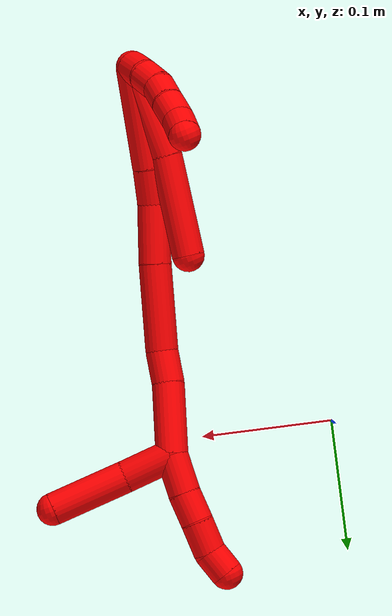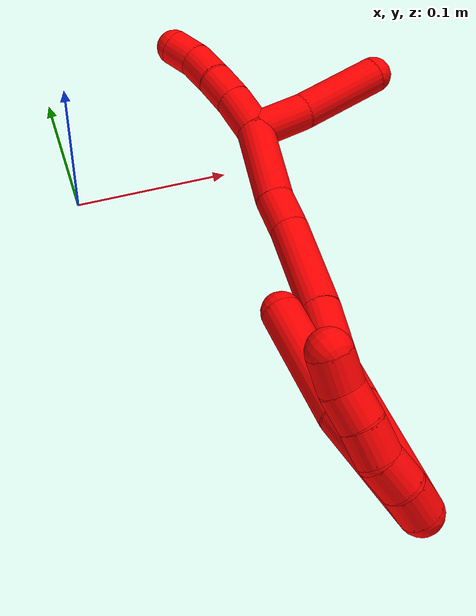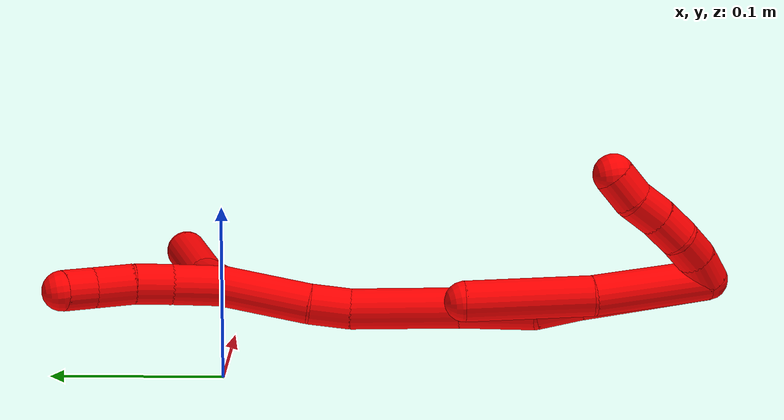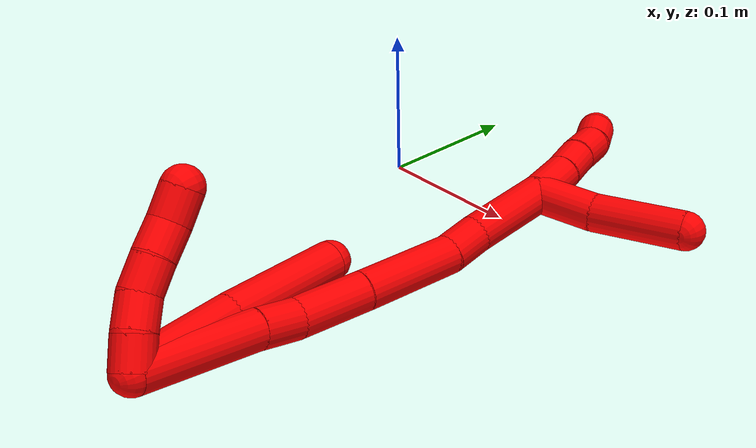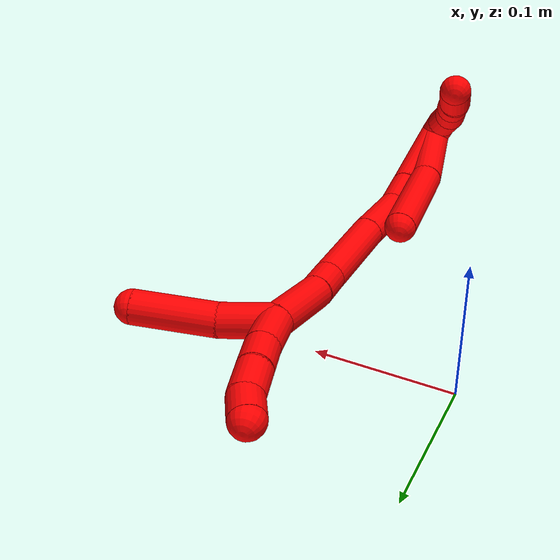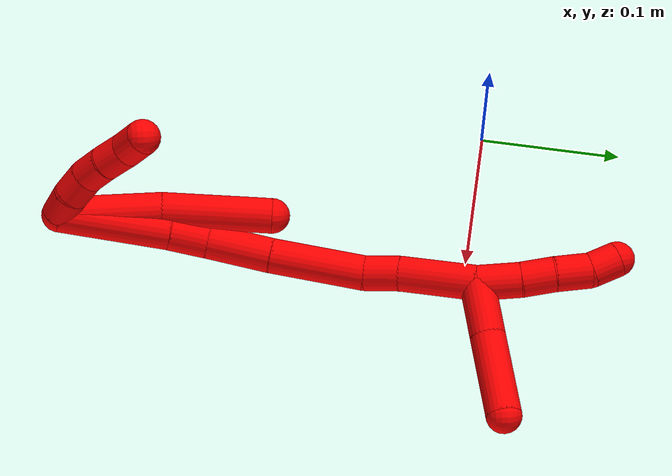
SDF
<sdf version="1.7">
 <world name="default">
  <model name="2">
   <static>0</static>
   <link name="2">
    <collision name="collision-cylinder-e_1_2_8">
     <pose>-0.000115 0.000368 -0.036059 -3.1314 -0.003191 0.606535</pose>
     <geometry><cylinder><radius>0.0125</radius><length>0.072122</length></cylinder></geometry>
     <surface>
      <friction><ode><mu>1.16</mu><mu2>1.16</mu2><slip1>0</slip1><slip2>0</slip2></ode></friction>
      <contact><ode><kp>1e+06</kp><kd>1</kd><max_vel>0</max_vel><min_depth>0.001</min_depth></ode></contact>
     </surface>
    </collision>
    <visual name="visual-cylinder-e_1_2_8">
     <pose>-0.000115 0.000368 -0.036059 -3.1314 -0.003191 0.606535</pose>
     <geometry><cylinder><radius>0.0125</radius><length>0.072122</length></cylinder></geometry>
     <material><ambient>1 0 0 1</ambient></material>
    </visual>
    <collision name="collision-cylinder-e_2_8_6">
     <pose>2.1e-05 0.007242 -0.110509 -2.97371 0.006442 -0.076529</pose>
     <geometry><cylinder><radius>0.0125</radius><length>0.077878</length></cylinder></geometry>
     <surface>
      <friction><ode><mu>1.16</mu><mu2>1.16</mu2><slip1>0</slip1><slip2>0</slip2></ode></friction>
      <contact><ode><kp>1e+06</kp><kd>1</kd><max_vel>0</max_vel><min_depth>0.001</min_depth></ode></contact>
     </surface>
    </collision>
    <visual name="visual-cylinder-e_2_8_6">
     <pose>2.1e-05 0.007242 -0.110509 -2.97371 0.006442 -0.076529</pose>
     <geometry><cylinder><radius>0.0125</radius><length>0.077878</length></cylinder></geometry>
     <material><ambient>1 0 0 1</ambient></material>
    </visual>
    <collision name="collision-cylinder-e_1_2_9">
     <pose>-0.008978 0.001169 -0.004247 -2.87307 -1.1147 2.71475</pose>
     <geometry><cylinder><radius>0.0125</radius><length>0.02</length></cylinder></geometry>
     <surface>
      <friction><ode><mu>1.16</mu><mu2>1.16</mu2><slip1>0</slip1><slip2>0</slip2></ode></friction>
      <contact><ode><kp>1e+06</kp><kd>1</kd><max_vel>0</max_vel><min_depth>0.001</min_depth></ode></contact>
     </surface>
    </collision>
    <visual name="visual-cylinder-e_1_2_9">
     <pose>-0.008978 0.001169 -0.004247 -2.87307 -1.1147 2.71475</pose>
     <geometry><cylinder><radius>0.0125</radius><length>0.02</length></cylinder></geometry>
     <material><ambient>1 0 0 1</ambient></material>
    </visual>
    <collision name="collision-cylinder-e_2_9_10">
     <pose>-0.026141 0.002717 -0.014225 -3.07534 -0.958917 3.01429</pose>
     <geometry><cylinder><radius>0.0125</radius><length>0.02</length></cylinder></geometry>
     <surface>
      <friction><ode><mu>1.16</mu><mu2>1.16</mu2><slip1>0</slip1><slip2>0</slip2></ode></friction>
      <contact><ode><kp>1e+06</kp><kd>1</kd><max_vel>0</max_vel><min_depth>0.001</min_depth></ode></contact>
     </surface>
    </collision>
    <visual name="visual-cylinder-e_2_9_10">
     <pose>-0.026141 0.002717 -0.014225 -3.07534 -0.958917 3.01429</pose>
     <geometry><cylinder><radius>0.0125</radius><length>0.02</length></cylinder></geometry>
     <material><ambient>1 0 0 1</ambient></material>
    </visual>
    <collision name="collision-cylinder-e_3_10_11">
     <pose>-0.041513 0.005693 -0.026407 -2.75903 -0.801846 2.28452</pose>
     <geometry><cylinder><radius>0.0125</radius><length>0.02</length></cylinder></geometry>
     <surface>
      <friction><ode><mu>1.16</mu><mu2>1.16</mu2><slip1>0</slip1><slip2>0</slip2></ode></friction>
      <contact><ode><kp>1e+06</kp><kd>1</kd><max_vel>0</max_vel><min_depth>0.001</min_depth></ode></contact>
     </surface>
    </collision>
    <visual name="visual-cylinder-e_3_10_11">
     <pose>-0.041513 0.005693 -0.026407 -2.75903 -0.801846 2.28452</pose>
     <geometry><cylinder><radius>0.0125</radius><length>0.02</length></cylinder></geometry>
     <material><ambient>1 0 0 1</ambient></material>
    </visual>
    <collision name="collision-cylinder-e_4_11_12">
     <pose>-0.055313 0.01031 -0.040082 -2.86883 -0.722531 2.44483</pose>
     <geometry><cylinder><radius>0.0125</radius><length>0.02</length></cylinder></geometry>
     <surface>
      <friction><ode><mu>1.16</mu><mu2>1.16</mu2><slip1>0</slip1><slip2>0</slip2></ode></friction>
      <contact><ode><kp>1e+06</kp><kd>1</kd><max_vel>0</max_vel><min_depth>0.001</min_depth></ode></contact>
     </surface>
    </collision>
    <visual name="visual-cylinder-e_4_11_12">
     <pose>-0.055313 0.01031 -0.040082 -2.86883 -0.722531 2.44483</pose>
     <geometry><cylinder><radius>0.0125</radius><length>0.02</length></cylinder></geometry>
     <material><ambient>1 0 0 1</ambient></material>
    </visual>
    <collision name="collision-cylinder-e_5_12_5">
     <pose>-0.069394 0.01608 -0.052799 -2.54268 -0.843286 1.9359</pose>
     <geometry><cylinder><radius>0.0125</radius><length>0.02</length></cylinder></geometry>
     <surface>
      <friction><ode><mu>1.16</mu><mu2>1.16</mu2><slip1>0</slip1><slip2>0</slip2></ode></friction>
      <contact><ode><kp>1e+06</kp><kd>1</kd><max_vel>0</max_vel><min_depth>0.001</min_depth></ode></contact>
     </surface>
    </collision>
    <visual name="visual-cylinder-e_5_12_5">
     <pose>-0.069394 0.01608 -0.052799 -2.54268 -0.843286 1.9359</pose>
     <geometry><cylinder><radius>0.0125</radius><length>0.02</length></cylinder></geometry>
     <material><ambient>1 0 0 1</ambient></material>
    </visual>
    <collision name="collision-cylinder-e_1_2_13">
     <pose>0.005906 0.006004 -0.038198 -2.98569 0.151573 -1.54252</pose>
     <geometry><cylinder><radius>0.0125</radius><length>0.078231</length></cylinder></geometry>
     <surface>
      <friction><ode><mu>1.16</mu><mu2>1.16</mu2><slip1>0</slip1><slip2>0</slip2></ode></friction>
      <contact><ode><kp>1e+06</kp><kd>1</kd><max_vel>0</max_vel><min_depth>0.001</min_depth></ode></contact>
     </surface>
    </collision>
    <visual name="visual-cylinder-e_1_2_13">
     <pose>0.005906 0.006004 -0.038198 -2.98569 0.151573 -1.54252</pose>
     <geometry><cylinder><radius>0.0125</radius><length>0.078231</length></cylinder></geometry>
     <material><ambient>1 0 0 1</ambient></material>
    </visual>
    <collision name="collision-cylinder-e_2_13_14">
     <pose>0.014863 0.014098 -0.089877 -2.98775 0.220023 -1.92313</pose>
     <geometry><cylinder><radius>0.0125</radius><length>0.027959</length></cylinder></geometry>
     <surface>
      <friction><ode><mu>1.16</mu><mu2>1.16</mu2><slip1>0</slip1><slip2>0</slip2></ode></friction>
      <contact><ode><kp>1e+06</kp><kd>1</kd><max_vel>0</max_vel><min_depth>0.001</min_depth></ode></contact>
     </surface>
    </collision>
    <visual name="visual-cylinder-e_2_13_14">
     <pose>0.014863 0.014098 -0.089877 -2.98775 0.220023 -1.92313</pose>
     <geometry><cylinder><radius>0.0125</radius><length>0.027959</length></cylinder></geometry>
     <material><ambient>1 0 0 1</ambient></material>
    </visual>
    <collision name="collision-cylinder-e_3_14_15">
     <pose>0.01973 0.024127 -0.12498 -2.78972 0.078682 -0.4358</pose>
     <geometry><cylinder><radius>0.0125</radius><length>0.046208</length></cylinder></geometry>
     <surface>
      <friction><ode><mu>1.16</mu><mu2>1.16</mu2><slip1>0</slip1><slip2>0</slip2></ode></friction>
      <contact><ode><kp>1e+06</kp><kd>1</kd><max_vel>0</max_vel><min_depth>0.001</min_depth></ode></contact>
     </surface>
    </collision>
    <visual name="visual-cylinder-e_3_14_15">
     <pose>0.01973 0.024127 -0.12498 -2.78972 0.078682 -0.4358</pose>
     <geometry><cylinder><radius>0.0125</radius><length>0.046208</length></cylinder></geometry>
     <material><ambient>1 0 0 1</ambient></material>
    </visual>
    <collision name="collision-cylinder-e_4_15_16">
     <pose>0.023969 0.0417 -0.178526 -2.84849 0.072513 -0.48191</pose>
     <geometry><cylinder><radius>0.0125</radius><length>0.066868</length></cylinder></geometry>
     <surface>
      <friction><ode><mu>1.16</mu><mu2>1.16</mu2><slip1>0</slip1><slip2>0</slip2></ode></friction>
      <contact><ode><kp>1e+06</kp><kd>1</kd><max_vel>0</max_vel><min_depth>0.001</min_depth></ode></contact>
     </surface>
    </collision>
    <visual name="visual-cylinder-e_4_15_16">
     <pose>0.023969 0.0417 -0.178526 -2.84849 0.072513 -0.48191</pose>
     <geometry><cylinder><radius>0.0125</radius><length>0.066868</length></cylinder></geometry>
     <material><ambient>1 0 0 1</ambient></material>
    </visual>
    <collision name="collision-cylinder-e_5_16_17">
     <pose>0.02479 0.054653 -0.22264 -2.87581 -0.12602 0.881962</pose>
     <geometry><cylinder><radius>0.0125</radius><length>0.025471</length></cylinder></geometry>
     <surface>
      <friction><ode><mu>1.16</mu><mu2>1.16</mu2><slip1>0</slip1><slip2>0</slip2></ode></friction>
      <contact><ode><kp>1e+06</kp><kd>1</kd><max_vel>0</max_vel><min_depth>0.001</min_depth></ode></contact>
     </surface>
    </collision>
    <visual name="visual-cylinder-e_5_16_17">
     <pose>0.02479 0.054653 -0.22264 -2.87581 -0.12602 0.881962</pose>
     <geometry><cylinder><radius>0.0125</radius><length>0.025471</length></cylinder></geometry>
     <material><ambient>1 0 0 1</ambient></material>
    </visual>
    <collision name="collision-cylinder-e_6_17_1">
     <pose>0.020302 0.069024 -0.259991 -2.72768 -0.10471 0.489171</pose>
     <geometry><cylinder><radius>0.0125</radius><length>0.055263</length></cylinder></geometry>
     <surface>
      <friction><ode><mu>1.16</mu><mu2>1.16</mu2><slip1>0</slip1><slip2>0</slip2></ode></friction>
      <contact><ode><kp>1e+06</kp><kd>1</kd><max_vel>0</max_vel><min_depth>0.001</min_depth></ode></contact>
     </surface>
    </collision>
    <visual name="visual-cylinder-e_6_17_1">
     <pose>0.020302 0.069024 -0.259991 -2.72768 -0.10471 0.489171</pose>
     <geometry><cylinder><radius>0.0125</radius><length>0.055263</length></cylinder></geometry>
     <material><ambient>1 0 0 1</ambient></material>
    </visual>
    <collision name="collision-cylinder-e_1_1_18">
     <pose>0.015548 0.081976 -0.300261 -3.01653 -0.121913 1.54524</pose>
     <geometry><cylinder><radius>0.0125</radius><length>0.030688</length></cylinder></geometry>
     <surface>
      <friction><ode><mu>1.16</mu><mu2>1.16</mu2><slip1>0</slip1><slip2>0</slip2></ode></friction>
      <contact><ode><kp>1e+06</kp><kd>1</kd><max_vel>0</max_vel><min_depth>0.001</min_depth></ode></contact>
     </surface>
    </collision>
    <visual name="visual-cylinder-e_1_1_18">
     <pose>0.015548 0.081976 -0.300261 -3.01653 -0.121913 1.54524</pose>
     <geometry><cylinder><radius>0.0125</radius><length>0.030688</length></cylinder></geometry>
     <material><ambient>1 0 0 1</ambient></material>
    </visual>
    <collision name="collision-cylinder-e_2_18_19">
     <pose>0.011665 0.084286 -0.326947 -3.10621 -0.172385 2.73762</pose>
     <geometry><cylinder><radius>0.0125</radius><length>0.023512</length></cylinder></geometry>
     <surface>
      <friction><ode><mu>1.16</mu><mu2>1.16</mu2><slip1>0</slip1><slip2>0</slip2></ode></friction>
      <contact><ode><kp>1e+06</kp><kd>1</kd><max_vel>0</max_vel><min_depth>0.001</min_depth></ode></contact>
     </surface>
    </collision>
    <visual name="visual-cylinder-e_2_18_19">
     <pose>0.011665 0.084286 -0.326947 -3.10621 -0.172385 2.73762</pose>
     <geometry><cylinder><radius>0.0125</radius><length>0.023512</length></cylinder></geometry>
     <material><ambient>1 0 0 1</ambient></material>
    </visual>
    <collision name="collision-cylinder-e_3_19_20">
     <pose>0.008838 0.084738 -0.351062 -3.13819 -0.064567 3.03625</pose>
     <geometry><cylinder><radius>0.0125</radius><length>0.025133</length></cylinder></geometry>
     <surface>
      <friction><ode><mu>1.16</mu><mu2>1.16</mu2><slip1>0</slip1><slip2>0</slip2></ode></friction>
      <contact><ode><kp>1e+06</kp><kd>1</kd><max_vel>0</max_vel><min_depth>0.001</min_depth></ode></contact>
     </surface>
    </collision>
    <visual name="visual-cylinder-e_3_19_20">
     <pose>0.008838 0.084738 -0.351062 -3.13819 -0.064567 3.03625</pose>
     <geometry><cylinder><radius>0.0125</radius><length>0.025133</length></cylinder></geometry>
     <material><ambient>1 0 0 1</ambient></material>
    </visual>
    <collision name="collision-cylinder-e_4_20_4">
     <pose>0.005452 0.082583 -0.373365 2.92022 -0.251795 -1.7004</pose>
     <geometry><cylinder><radius>0.0125</radius><length>0.020667</length></cylinder></geometry>
     <surface>
      <friction><ode><mu>1.16</mu><mu2>1.16</mu2><slip1>0</slip1><slip2>0</slip2></ode></friction>
      <contact><ode><kp>1e+06</kp><kd>1</kd><max_vel>0</max_vel><min_depth>0.001</min_depth></ode></contact>
     </surface>
    </collision>
    <visual name="visual-cylinder-e_4_20_4">
     <pose>0.005452 0.082583 -0.373365 2.92022 -0.251795 -1.7004</pose>
     <geometry><cylinder><radius>0.0125</radius><length>0.020667</length></cylinder></geometry>
     <material><ambient>1 0 0 1</ambient></material>
    </visual>
    <collision name="collision-cylinder-e_1_1_21">
     <pose>0.027755 0.096774 -0.28662 -1.65862 0.552785 -0.600709</pose>
     <geometry><cylinder><radius>0.0125</radius><length>0.03939</length></cylinder></geometry>
     <surface>
      <friction><ode><mu>1.16</mu><mu2>1.16</mu2><slip1>0</slip1><slip2>0</slip2></ode></friction>
      <contact><ode><kp>1e+06</kp><kd>1</kd><max_vel>0</max_vel><min_depth>0.001</min_depth></ode></contact>
     </surface>
    </collision>
    <visual name="visual-cylinder-e_1_1_21">
     <pose>0.027755 0.096774 -0.28662 -1.65862 0.552785 -0.600709</pose>
     <geometry><cylinder><radius>0.0125</radius><length>0.03939</length></cylinder></geometry>
     <material><ambient>1 0 0 1</ambient></material>
    </visual>
    <collision name="collision-cylinder-e_2_21_3">
     <pose>0.049753 0.141418 -0.289295 -1.61386 0.39486 -0.411765</pose>
     <geometry><cylinder><radius>0.0125</radius><length>0.06061</length></cylinder></geometry>
     <surface>
      <friction><ode><mu>1.16</mu><mu2>1.16</mu2><slip1>0</slip1><slip2>0</slip2></ode></friction>
      <contact><ode><kp>1e+06</kp><kd>1</kd><max_vel>0</max_vel><min_depth>0.001</min_depth></ode></contact>
     </surface>
    </collision>
    <visual name="visual-cylinder-e_2_21_3">
     <pose>0.049753 0.141418 -0.289295 -1.61386 0.39486 -0.411765</pose>
     <geometry><cylinder><radius>0.0125</radius><length>0.06061</length></cylinder></geometry>
     <material><ambient>1 0 0 1</ambient></material>
    </visual>
    <collision name="collision-sphere-3">
     <pose>0.061411 0.169365 -0.290499 0 -0 0</pose>
     <geometry><sphere><radius>0.0125</radius></sphere></geometry>
     <surface>
      <friction><ode><mu>1.16</mu><mu2>1.16</mu2><slip1>0</slip1><slip2>0</slip2></ode></friction>
      <contact><ode><kp>1e+06</kp><kd>1</kd><max_vel>0</max_vel><min_depth>0.001</min_depth></ode></contact>
     </surface>
    </collision>
    <visual name="visual-sphere-3">
     <pose>0.061411 0.169365 -0.290499 0 -0 0</pose>
     <geometry><sphere><radius>0.0125</radius></sphere></geometry>
     <material><ambient>1 0 0 1</ambient></material>
    </visual>
    <collision name="collision-sphere-21">
     <pose>0.038096 0.113471 -0.288091 0 -0 0</pose>
     <geometry><sphere><radius>0.0125</radius></sphere></geometry>
     <surface>
      <friction><ode><mu>1.16</mu><mu2>1.16</mu2><slip1>0</slip1><slip2>0</slip2></ode></friction>
      <contact><ode><kp>1e+06</kp><kd>1</kd><max_vel>0</max_vel><min_depth>0.001</min_depth></ode></contact>
     </surface>
    </collision>
    <visual name="visual-sphere-21">
     <pose>0.038096 0.113471 -0.288091 0 -0 0</pose>
     <geometry><sphere><radius>0.0125</radius></sphere></geometry>
     <material><ambient>1 0 0 1</ambient></material>
    </visual>
    <collision name="collision-sphere-4">
     <pose>0.002878 0.080386 -0.383129 0 -0 0</pose>
     <geometry><sphere><radius>0.0125</radius></sphere></geometry>
     <surface>
      <friction><ode><mu>1.16</mu><mu2>1.16</mu2><slip1>0</slip1><slip2>0</slip2></ode></friction>
      <contact><ode><kp>1e+06</kp><kd>1</kd><max_vel>0</max_vel><min_depth>0.001</min_depth></ode></contact>
     </surface>
    </collision>
    <visual name="visual-sphere-4">
     <pose>0.002878 0.080386 -0.383129 0 -0 0</pose>
     <geometry><sphere><radius>0.0125</radius></sphere></geometry>
     <material><ambient>1 0 0 1</ambient></material>
    </visual>
    <collision name="collision-sphere-20">
     <pose>0.008027 0.084781 -0.363602 0 -0 0</pose>
     <geometry><sphere><radius>0.0125</radius></sphere></geometry>
     <surface>
      <friction><ode><mu>1.16</mu><mu2>1.16</mu2><slip1>0</slip1><slip2>0</slip2></ode></friction>
      <contact><ode><kp>1e+06</kp><kd>1</kd><max_vel>0</max_vel><min_depth>0.001</min_depth></ode></contact>
     </surface>
    </collision>
    <visual name="visual-sphere-20">
     <pose>0.008027 0.084781 -0.363602 0 -0 0</pose>
     <geometry><sphere><radius>0.0125</radius></sphere></geometry>
     <material><ambient>1 0 0 1</ambient></material>
    </visual>
    <collision name="collision-sphere-11">
     <pose>-0.0487 0.008289 -0.032858 0 -0 0</pose>
     <geometry><sphere><radius>0.0125</radius></sphere></geometry>
     <surface>
      <friction><ode><mu>1.16</mu><mu2>1.16</mu2><slip1>0</slip1><slip2>0</slip2></ode></friction>
      <contact><ode><kp>1e+06</kp><kd>1</kd><max_vel>0</max_vel><min_depth>0.001</min_depth></ode></contact>
     </surface>
    </collision>
    <visual name="visual-sphere-11">
     <pose>-0.0487 0.008289 -0.032858 0 -0 0</pose>
     <geometry><sphere><radius>0.0125</radius></sphere></geometry>
     <material><ambient>1 0 0 1</ambient></material>
    </visual>
    <collision name="collision-sphere-10">
     <pose>-0.034327 0.003098 -0.019956 0 -0 0</pose>
     <geometry><sphere><radius>0.0125</radius></sphere></geometry>
     <surface>
      <friction><ode><mu>1.16</mu><mu2>1.16</mu2><slip1>0</slip1><slip2>0</slip2></ode></friction>
      <contact><ode><kp>1e+06</kp><kd>1</kd><max_vel>0</max_vel><min_depth>0.001</min_depth></ode></contact>
     </surface>
    </collision>
    <visual name="visual-sphere-10">
     <pose>-0.034327 0.003098 -0.019956 0 -0 0</pose>
     <geometry><sphere><radius>0.0125</radius></sphere></geometry>
     <material><ambient>1 0 0 1</ambient></material>
    </visual>
    <collision name="collision-sphere-6">
     <pose>0.000272 0.013748 -0.148899 0 -0 0</pose>
     <geometry><sphere><radius>0.0125</radius></sphere></geometry>
     <surface>
      <friction><ode><mu>1.16</mu><mu2>1.16</mu2><slip1>0</slip1><slip2>0</slip2></ode></friction>
      <contact><ode><kp>1e+06</kp><kd>1</kd><max_vel>0</max_vel><min_depth>0.001</min_depth></ode></contact>
     </surface>
    </collision>
    <visual name="visual-sphere-6">
     <pose>0.000272 0.013748 -0.148899 0 -0 0</pose>
     <geometry><sphere><radius>0.0125</radius></sphere></geometry>
     <material><ambient>1 0 0 1</ambient></material>
    </visual>
    <collision name="collision-sphere-9">
     <pose>-0.017956 0.002337 -0.008493 0 -0 0</pose>
     <geometry><sphere><radius>0.0125</radius></sphere></geometry>
     <surface>
      <friction><ode><mu>1.16</mu><mu2>1.16</mu2><slip1>0</slip1><slip2>0</slip2></ode></friction>
      <contact><ode><kp>1e+06</kp><kd>1</kd><max_vel>0</max_vel><min_depth>0.001</min_depth></ode></contact>
     </surface>
    </collision>
    <visual name="visual-sphere-9">
     <pose>-0.017956 0.002337 -0.008493 0 -0 0</pose>
     <geometry><sphere><radius>0.0125</radius></sphere></geometry>
     <material><ambient>1 0 0 1</ambient></material>
    </visual>
    <collision name="collision-sphere-2">
     <geometry><sphere><radius>0.0125</radius></sphere></geometry>
     <surface>
      <friction><ode><mu>1.16</mu><mu2>1.16</mu2><slip1>0</slip1><slip2>0</slip2></ode></friction>
      <contact><ode><kp>1e+06</kp><kd>1</kd><max_vel>0</max_vel><min_depth>0.001</min_depth></ode></contact>
     </surface>
    </collision>
    <visual name="visual-sphere-2">
     <geometry><sphere><radius>0.0125</radius></sphere></geometry>
     <material><ambient>1 0 0 1</ambient></material>
    </visual>
    <collision name="collision-sphere-19">
     <pose>0.009649 0.084695 -0.338521 0 -0 0</pose>
     <geometry><sphere><radius>0.0125</radius></sphere></geometry>
     <surface>
      <friction><ode><mu>1.16</mu><mu2>1.16</mu2><slip1>0</slip1><slip2>0</slip2></ode></friction>
      <contact><ode><kp>1e+06</kp><kd>1</kd><max_vel>0</max_vel><min_depth>0.001</min_depth></ode></contact>
     </surface>
    </collision>
    <visual name="visual-sphere-19">
     <pose>0.009649 0.084695 -0.338521 0 -0 0</pose>
     <geometry><sphere><radius>0.0125</radius></sphere></geometry>
     <material><ambient>1 0 0 1</ambient></material>
    </visual>
    <collision name="collision-sphere-8">
     <pose>-0.00023 0.000735 -0.072118 0 -0 0</pose>
     <geometry><sphere><radius>0.0125</radius></sphere></geometry>
     <surface>
      <friction><ode><mu>1.16</mu><mu2>1.16</mu2><slip1>0</slip1><slip2>0</slip2></ode></friction>
      <contact><ode><kp>1e+06</kp><kd>1</kd><max_vel>0</max_vel><min_depth>0.001</min_depth></ode></contact>
     </surface>
    </collision>
    <visual name="visual-sphere-8">
     <pose>-0.00023 0.000735 -0.072118 0 -0 0</pose>
     <geometry><sphere><radius>0.0125</radius></sphere></geometry>
     <material><ambient>1 0 0 1</ambient></material>
    </visual>
    <collision name="collision-sphere-12">
     <pose>-0.061926 0.012331 -0.047306 0 -0 0</pose>
     <geometry><sphere><radius>0.0125</radius></sphere></geometry>
     <surface>
      <friction><ode><mu>1.16</mu><mu2>1.16</mu2><slip1>0</slip1><slip2>0</slip2></ode></friction>
      <contact><ode><kp>1e+06</kp><kd>1</kd><max_vel>0</max_vel><min_depth>0.001</min_depth></ode></contact>
     </surface>
    </collision>
    <visual name="visual-sphere-12">
     <pose>-0.061926 0.012331 -0.047306 0 -0 0</pose>
     <geometry><sphere><radius>0.0125</radius></sphere></geometry>
     <material><ambient>1 0 0 1</ambient></material>
    </visual>
    <collision name="collision-sphere-5">
     <pose>-0.076862 0.019829 -0.058292 0 -0 0</pose>
     <geometry><sphere><radius>0.0125</radius></sphere></geometry>
     <surface>
      <friction><ode><mu>1.16</mu><mu2>1.16</mu2><slip1>0</slip1><slip2>0</slip2></ode></friction>
      <contact><ode><kp>1e+06</kp><kd>1</kd><max_vel>0</max_vel><min_depth>0.001</min_depth></ode></contact>
     </surface>
    </collision>
    <visual name="visual-sphere-5">
     <pose>-0.076862 0.019829 -0.058292 0 -0 0</pose>
     <geometry><sphere><radius>0.0125</radius></sphere></geometry>
     <material><ambient>1 0 0 1</ambient></material>
    </visual>
    <collision name="collision-sphere-13">
     <pose>0.011812 0.012008 -0.076396 0 -0 0</pose>
     <geometry><sphere><radius>0.0125</radius></sphere></geometry>
     <surface>
      <friction><ode><mu>1.16</mu><mu2>1.16</mu2><slip1>0</slip1><slip2>0</slip2></ode></friction>
      <contact><ode><kp>1e+06</kp><kd>1</kd><max_vel>0</max_vel><min_depth>0.001</min_depth></ode></contact>
     </surface>
    </collision>
    <visual name="visual-sphere-13">
     <pose>0.011812 0.012008 -0.076396 0 -0 0</pose>
     <geometry><sphere><radius>0.0125</radius></sphere></geometry>
     <material><ambient>1 0 0 1</ambient></material>
    </visual>
    <collision name="collision-sphere-14">
     <pose>0.017914 0.016189 -0.103359 0 -0 0</pose>
     <geometry><sphere><radius>0.0125</radius></sphere></geometry>
     <surface>
      <friction><ode><mu>1.16</mu><mu2>1.16</mu2><slip1>0</slip1><slip2>0</slip2></ode></friction>
      <contact><ode><kp>1e+06</kp><kd>1</kd><max_vel>0</max_vel><min_depth>0.001</min_depth></ode></contact>
     </surface>
    </collision>
    <visual name="visual-sphere-14">
     <pose>0.017914 0.016189 -0.103359 0 -0 0</pose>
     <geometry><sphere><radius>0.0125</radius></sphere></geometry>
     <material><ambient>1 0 0 1</ambient></material>
    </visual>
    <collision name="collision-sphere-15">
     <pose>0.021546 0.032065 -0.146602 0 -0 0</pose>
     <geometry><sphere><radius>0.0125</radius></sphere></geometry>
     <surface>
      <friction><ode><mu>1.16</mu><mu2>1.16</mu2><slip1>0</slip1><slip2>0</slip2></ode></friction>
      <contact><ode><kp>1e+06</kp><kd>1</kd><max_vel>0</max_vel><min_depth>0.001</min_depth></ode></contact>
     </surface>
    </collision>
    <visual name="visual-sphere-15">
     <pose>0.021546 0.032065 -0.146602 0 -0 0</pose>
     <geometry><sphere><radius>0.0125</radius></sphere></geometry>
     <material><ambient>1 0 0 1</ambient></material>
    </visual>
    <collision name="collision-sphere-16">
     <pose>0.026391 0.051335 -0.210449 0 -0 0</pose>
     <geometry><sphere><radius>0.0125</radius></sphere></geometry>
     <surface>
      <friction><ode><mu>1.16</mu><mu2>1.16</mu2><slip1>0</slip1><slip2>0</slip2></ode></friction>
      <contact><ode><kp>1e+06</kp><kd>1</kd><max_vel>0</max_vel><min_depth>0.001</min_depth></ode></contact>
     </surface>
    </collision>
    <visual name="visual-sphere-16">
     <pose>0.026391 0.051335 -0.210449 0 -0 0</pose>
     <geometry><sphere><radius>0.0125</radius></sphere></geometry>
     <material><ambient>1 0 0 1</ambient></material>
    </visual>
    <collision name="collision-sphere-17">
     <pose>0.02319 0.057972 -0.234831 0 -0 0</pose>
     <geometry><sphere><radius>0.0125</radius></sphere></geometry>
     <surface>
      <friction><ode><mu>1.16</mu><mu2>1.16</mu2><slip1>0</slip1><slip2>0</slip2></ode></friction>
      <contact><ode><kp>1e+06</kp><kd>1</kd><max_vel>0</max_vel><min_depth>0.001</min_depth></ode></contact>
     </surface>
    </collision>
    <visual name="visual-sphere-17">
     <pose>0.02319 0.057972 -0.234831 0 -0 0</pose>
     <geometry><sphere><radius>0.0125</radius></sphere></geometry>
     <material><ambient>1 0 0 1</ambient></material>
    </visual>
    <collision name="collision-sphere-1">
     <pose>0.017414 0.080076 -0.28515 0 -0 0</pose>
     <geometry><sphere><radius>0.0125</radius></sphere></geometry>
     <surface>
      <friction><ode><mu>1.16</mu><mu2>1.16</mu2><slip1>0</slip1><slip2>0</slip2></ode></friction>
      <contact><ode><kp>1e+06</kp><kd>1</kd><max_vel>0</max_vel><min_depth>0.001</min_depth></ode></contact>
     </surface>
    </collision>
    <visual name="visual-sphere-1">
     <pose>0.017414 0.080076 -0.28515 0 -0 0</pose>
     <geometry><sphere><radius>0.0125</radius></sphere></geometry>
     <material><ambient>1 0 0 1</ambient></material>
    </visual>
    <collision name="collision-sphere-18">
     <pose>0.013682 0.083876 -0.315372 0 -0 0</pose>
     <geometry><sphere><radius>0.0125</radius></sphere></geometry>
     <surface>
      <friction><ode><mu>1.16</mu><mu2>1.16</mu2><slip1>0</slip1><slip2>0</slip2></ode></friction>
      <contact><ode><kp>1e+06</kp><kd>1</kd><max_vel>0</max_vel><min_depth>0.001</min_depth></ode></contact>
     </surface>
    </collision>
    <visual name="visual-sphere-18">
     <pose>0.013682 0.083876 -0.315372 0 -0 0</pose>
     <geometry><sphere><radius>0.0125</radius></sphere></geometry>
     <material><ambient>1 0 0 1</ambient></material>
    </visual>
    <inertial>
     <pose>0.008409 0.042668 -0.159307 0 -0 0</pose>
     <mass>0.75</mass>
     <inertia>
      <ixx>9.1e-05</ixx>
      <ixy>0</ixy>
      <ixz>0</ixz>
      <iyy>-0.000126</iyy>
      <iyz>0</iyz>
      <izz>-0.000119</izz>
     </inertia>
    </inertial>
   </link>
   <pose>0.117132 -0.2865 0.03248 1.35572 1.09059 0.054201</pose>
  </model>
 </world>
</sdf>
